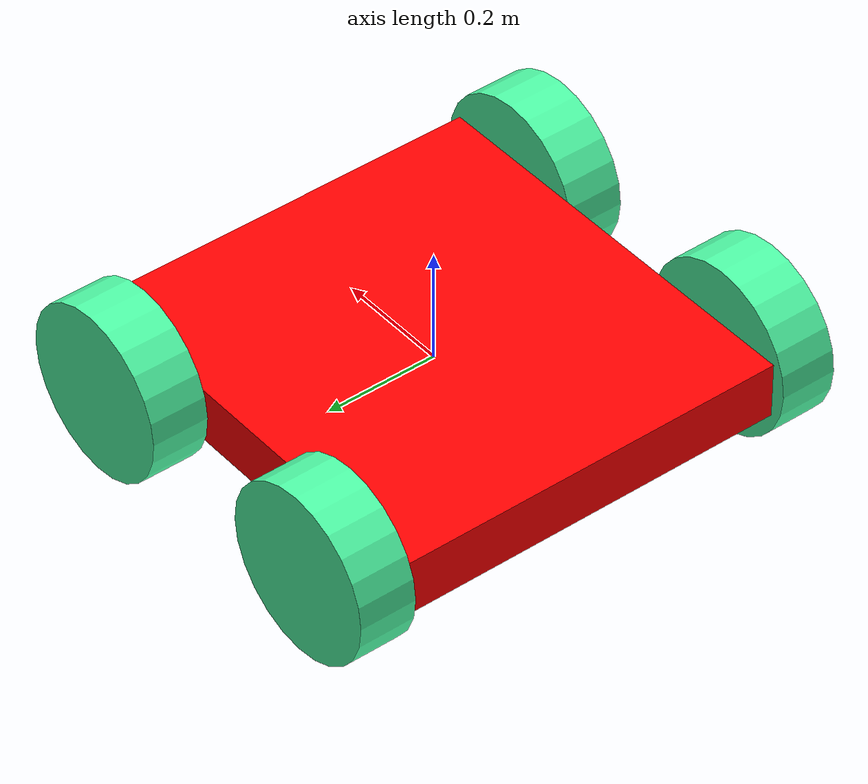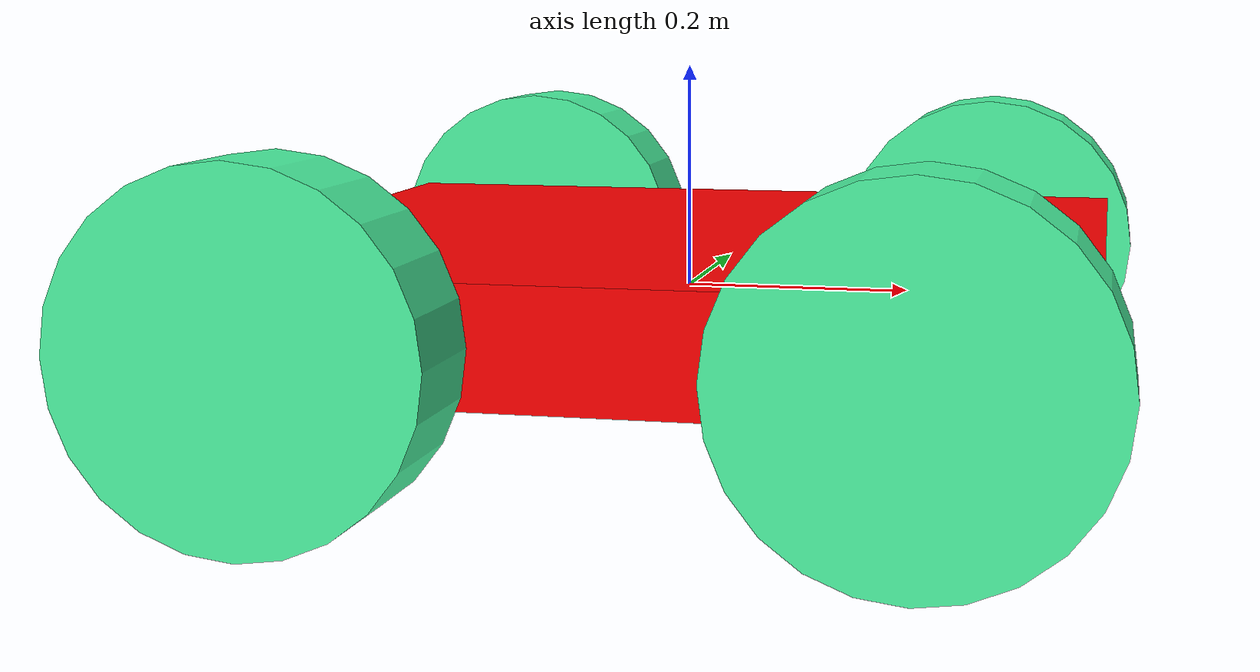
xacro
<?xml version="1.0"?>
<robot xmlns:xacro="http://www.ros.org/wiki/xacro" name="rover">

    <link name="base_footprint"/>

    <xacro:property name="constant" value="1.0/12.0"/>
    <xacro:property name="mass" value="1.0"/>
    <xacro:property name="width" value="0.75"/>
    <xacro:property name="height" value="0.1"/>
    <xacro:property name="depth" value="0.7"/>

    <link name="base_link">
            <inertial>
                <origin xyz="0.0 0.0 0.0" rpy="0.0 0.0 0.0"/>
                <mass value="10.0"/>
                <inertia ixx="${mass*(height*height+depth*depth)/12}" ixy="0.0" ixz="0.0"
                         iyy="${mass*(height*height+width*width)/12}" iyz="0.0"
                         izz="${mass*(width*width+depth*depth)/12}"/>
            </inertial>
            <visual>
                <origin xyz="0.0 0.0 0.0" rpy="0.0 0.0 0.0"/>
                <geometry>
                    <box size="0.75 0.7 0.1"/>
                </geometry>
                <material name="">
                    <color rgba="1.0 0.0 0.0 1.0"/>
                </material>
            </visual>
            <collision>
                <geometry>
                    <box size="0.75 0.7 0.1"/>
                </geometry>
            </collision>

    </link>
    <joint name="base_joint" type="fixed">
        <parent link="base_footprint"/>
        <child link="base_link"/>
        <origin xyz="0.0 0.0 0.0" rpy="0.0 0.0 0.0"/>
    </joint>

    <!--xacro macro-->
    <xacro:macro name="wheel" params="name x y">

        <link name="wheel_${name}_link">
            <inertial>
                <origin xyz="0.0 0.0 0.0" rpy="0.0 0.0 0.0"/>
                <mass value="0.4"/>
                <inertia ixx="0.0" ixy="0.0" ixz="0.0" iyy="0.0" iyz="0.0" izz="0.0"/>
            </inertial>
            <visual name="">
                <origin xyz="0.0 0.0 0.0" rpy="0.0 0.0 0.0"/>
                <geometry>
                    <cylinder radius="0.15" length="0.1"/>
                </geometry>
                <material name="">
                    <color rgba="0.3 0.97 0.64 1.0"/>
                    <texture filename=""/>
                </material>
            </visual>
            <collision>
                <origin xyz="0.0 0.0 0.0" rpy="0.0 0.0 0.0"/>
                <geometry>
                    <cylinder radius="0.15" length="0.1"/>
                </geometry>
            </collision>
    </link>

    <joint name="${name}_wheel_joint" type="continuous">
        <parent link="base_link"/>
        <child link="wheel_${name}_link"/>
        <axis xyz="0 0 1.0"/>
        <origin xyz="${x} ${y} 0" rpy="1.57 0 0"/>
    </joint>

    </xacro:macro>

    <!--Wheel Creation using macros-->
    <xacro:wheel name="rear_right" x="0.25" y="0.40"/>
    <xacro:wheel name="rear_left" x="0.25" y="-0.40"/>
    <xacro:wheel name="front_right" x="-0.25" y="0.40"/>
    <xacro:wheel name="front_left" x="-0.25" y="-0.40"/>

    <gazebo>
        <plugin name="differential_drive_controller" filename="libgazebo_ros_diff_drive.so">

            <!-- Plugin update rate in Hz -->
            <updateRate>10</updateRate>

            <!-- Name of left joint, defaults to `left_joint` -->
            <leftJoint>front_left_wheel_joint</leftJoint>
            <leftJoint>rear_left_wheel_joint</leftJoint>

            <!-- Name of right joint, defaults to `right_joint` -->
            <rightJoint>front_right_wheel_joint</rightJoint>
            <rightJoint>rear_right_wheel_joint</rightJoint>

            <!-- The distance from the center of one wheel to the other, in meters, defaults to 0.34 m -->
            <wheelSeparation>0.8</wheelSeparation>

            <!-- Diameter of the wheels, in meters, defaults to 0.15 m -->
            <wheelDiameter>0.30</wheelDiameter>

            <!-- Wheel acceleration, in rad/s^2, defaults to 0.0 rad/s^2 -->
            <wheelAcceleration>1.0</wheelAcceleration>

            <!-- Maximum torque which the wheels can produce, in Nm, defaults to 5 Nm -->
            <wheelTorque>10</wheelTorque>

            <!-- Topic to receive geometry_msgs/Twist message commands, defaults to `cmd_vel` -->
            <commandTopic>cmd_vel</commandTopic>

            <!-- Topic to publish nav_msgs/Odometry messages, defaults to `odom` -->
            <odometryTopic>odom</odometryTopic>

            <!-- Odometry frame, defaults to `odom` -->
            <odometryFrame>odom</odometryFrame>

            <!-- Robot frame to calculate odometry from, defaults to `base_footprint` -->
            <robotBaseFrame>base_footprint</robotBaseFrame>

            <!-- Odometry source, 0 for ENCODER, 1 for WORLD, defaults to WORLD -->
            <odometrySource>1</odometrySource>

            <!-- Set to true to publish transforms for the wheel links, defaults to false -->
            <publishWheelTF>true</publishWheelTF>

            <!-- Set to true to publish transforms for the odometry, defaults to true -->
            <publishOdom>true</publishOdom>

            <!-- Set to true to publish sensor_msgs/JointState on /joint_states for the wheel joints, defaults to false -->
            <publishWheelJointState>true</publishWheelJointState>

            <!-- Set to true to swap right and left wheels, defaults to true -->
            <legacyMode>false</legacyMode>
        </plugin>
    </gazebo>

    <gazebo reference="base_link">
        <material>Gazebo/Blue</material>
    </gazebo>

</robot>
